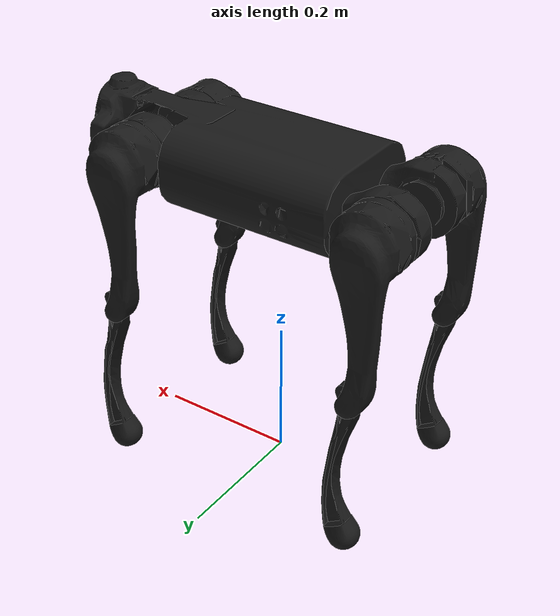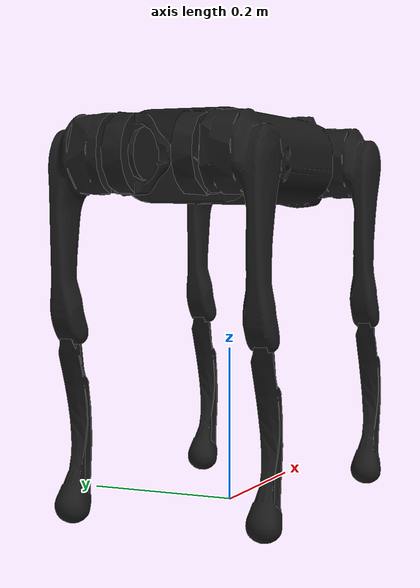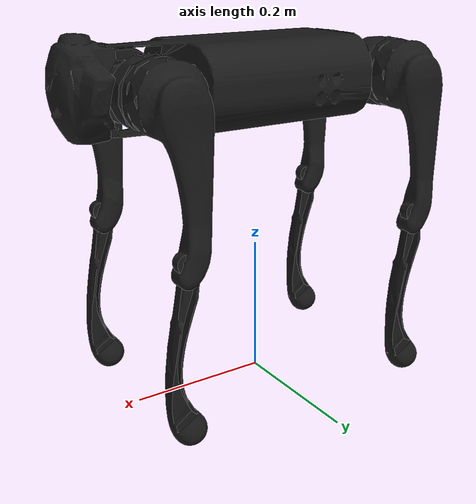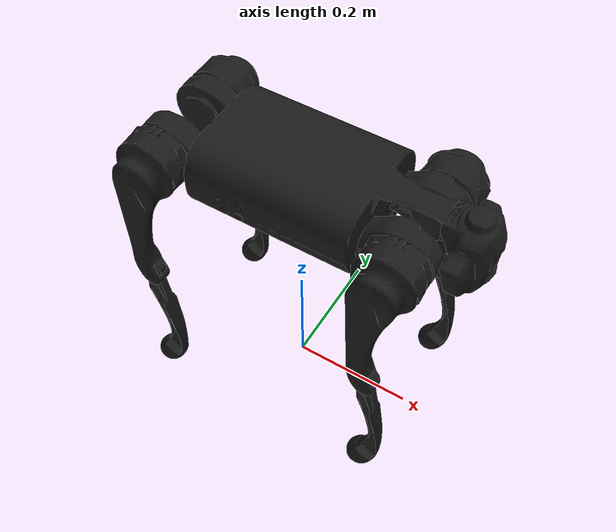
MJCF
<mujoco model="go1">
  <compiler angle="radian" meshdir="assets" autolimits="true"/>

  <option cone="pyramidal" impratio="100"/>

  <default>
    <default class="go1">
      <geom friction="0.6" margin="0.001"/>
      <joint axis="0 1 0" damping="2" armature="0.01"/>
      <general forcerange="-23.7 23.7" biastype="affine" gainprm="40" biasprm="0 -40 -3"/>
      <default class="abduction">
        <joint axis="1 0 0" damping="1" range="-0.863 0.863"/>
        <general ctrlrange="-0.863 0.863"/>
      </default>
      <default class="hip">
        <joint range="-0.686 4.501"/>
        <general ctrlrange="-0.686 4.501"/>
      </default>
      <default class="knee">
        <joint range="-2.818 -0.888"/>
        <general forcerange="-35.55 35.55" ctrlrange="-2.818 -0.888"/>
      </default>
      <default class="visual">
        <geom type="mesh" contype="0" conaffinity="0" group="2" material="dark"/>
      </default>
      <default class="collision">
        <geom group="3" type="capsule"/>
        <default class="hip_left3">
          <geom size="0.02 0.02 0.046" quat="1 1 0 0" type="box"/>
        </default>
        <default class="hip_right3">
          <geom size="0.02 0.02 0.046" quat="1 1 0 0" type="box"/>
        </default>
        <default class="foot">
          <geom type="sphere" size="0.023" pos="0 0 -0.213" priority="1" solimp="0.015 1 0.031" condim="3"
            friction="0.8 0.02 0.01"/>
        </default>
      </default>
    </default>
  </default>

  <asset>
    <material name="dark" rgba="0.1 0.1 0.1 1"/>
    <mesh class="go1" file="trunk.stl"/>
    <mesh class="go1" file="hip.stl"/>
    <mesh class="go1" file="thigh_mirror.stl"/>
    <mesh class="go1" file="calf.stl"/>
    <mesh class="go1" file="thigh.stl"/>
  </asset>

  <worldbody>
    <light name="spotlight" mode="targetbodycom" target="trunk" pos="0 -1 2"/>
    <body name="trunk" pos="0 0 0.445" childclass="go1">
      <camera name="tracking" mode="trackcom" pos="0 -1 0.8" xyaxes="1 0 0 0 1 1"/>
      <site name="head" pos="0.3 0 0" rgba="1 0 0 1" size="0.02" group="5"/>
      <inertial pos="0.0223 0.002 -0.0005" quat="-0.00342088 0.705204 0.000106698 0.708996" mass="5.204"
        diaginertia="0.0716565 0.0630105 0.0168101"/>
      <freejoint/>
      <geom class="visual" mesh="trunk"/>
      <body name="FL_hip" pos="0.1881 0.04675 0">
        <inertial pos="-0.0049166 -0.00762615 -8.865e-05" quat="0.482891 0.495027 0.514169 0.507341" mass="0.68"
          diaginertia="0.000734064 0.000468438 0.000398719"/>
        <joint class="abduction" name="FL_hip_joint"/>
        <geom class="visual" mesh="hip"/>
        <body name="FL_thigh" pos="0 0.08 0">
          <inertial pos="-0.00304722 -0.019315 -0.0305004" quat="0.753383 0.0775126 -0.0272313 0.65243" mass="1.009"
            diaginertia="0.00478717 0.00460903 0.000709268"/>
          <joint class="hip" name="FL_thigh_joint"/>
          <geom class="visual" mesh="thigh"/>
          <body name="FL_calf" pos="0 0 -0.213">
            <inertial pos="0.00429862 0.000976676 -0.146197" quat="0.691246 0.00357467 0.00511118 0.722592"
              mass="0.195862" diaginertia="0.00149767 0.00148468 3.58427e-05"/>
            <joint class="knee" name="FL_calf_joint"/>
            <geom class="visual" mesh="calf"/>
            <geom name="FL" class="foot"/>
            <site name="FL" pos="0 0 -0.213" type="sphere" size="0.023" group="5"/>
          </body>
        </body>
      </body>
      <body name="FR_hip" pos="0.1881 -0.04675 0">
        <inertial pos="-0.0049166 0.00762615 -8.865e-05" quat="0.507341 0.514169 0.495027 0.482891" mass="0.68"
          diaginertia="0.000734064 0.000468438 0.000398719"/>
        <joint class="abduction" name="FR_hip_joint"/>
        <geom class="visual" mesh="hip" quat="1 0 0 0"/>
        <body name="FR_thigh" pos="0 -0.08 0">
          <inertial pos="-0.00304722 0.019315 -0.0305004" quat="0.65243 -0.0272313 0.0775126 0.753383" mass="1.009"
            diaginertia="0.00478717 0.00460903 0.000709268"/>
          <joint class="hip" name="FR_thigh_joint"/>
          <geom class="visual" mesh="thigh_mirror"/>
          <body name="FR_calf" pos="0 0 -0.213">
            <inertial pos="0.00429862 0.000976676 -0.146197" quat="0.691246 0.00357467 0.00511118 0.722592"
              mass="0.195862" diaginertia="0.00149767 0.00148468 3.58427e-05"/>
            <joint class="knee" name="FR_calf_joint"/>
            <geom class="visual" mesh="calf"/>
            <geom name="FR" class="foot"/>
            <site name="FR" pos="0 0 -0.213" type="sphere" size="0.023" group="5"/>
          </body>
        </body>
      </body>
      <body name="RL_hip" pos="-0.1881 0.04675 0">
        <inertial pos="0.0049166 -0.00762615 -8.865e-05" quat="0.514169 0.507341 0.482891 0.495027" mass="0.68"
          diaginertia="0.000734064 0.000468438 0.000398719"/>
        <joint class="abduction" name="RL_hip_joint"/>
        <geom class="visual" quat="0 0 1 0" mesh="hip"/>
        <geom class="hip_left3"/>
        <body name="RL_thigh" pos="0 0.08 0">
          <inertial pos="-0.00304722 -0.019315 -0.0305004" quat="0.753383 0.0775126 -0.0272313 0.65243" mass="1.009"
            diaginertia="0.00478717 0.00460903 0.000709268"/>
          <joint class="hip" name="RL_thigh_joint"/>
          <geom class="visual" mesh="thigh"/>
          <body name="RL_calf" pos="0 0 -0.213">
            <inertial pos="0.00429862 0.000976676 -0.146197" quat="0.691246 0.00357467 0.00511118 0.722592"
              mass="0.195862" diaginertia="0.00149767 0.00148468 3.58427e-05"/>
            <joint class="knee" name="RL_calf_joint"/>
            <geom class="visual" mesh="calf"/>
            <geom name="RL" class="foot"/>
            <site name="RL" pos="0 0 -0.213" type="sphere" size="0.023" group="5"/>
          </body>
        </body>
      </body>
      <body name="RR_hip" pos="-0.1881 -0.04675 0">
        <inertial pos="0.0049166 0.00762615 -8.865e-05" quat="0.495027 0.482891 0.507341 0.514169" mass="0.68"
          diaginertia="0.000734064 0.000468438 0.000398719"/>
        <joint class="abduction" name="RR_hip_joint"/>
        <geom class="visual" quat="0 0 0 -1" mesh="hip"/>
        <geom class="hip_right3"/>
        <body name="RR_thigh" pos="0 -0.08 0">
          <inertial pos="-0.00304722 0.019315 -0.0305004" quat="0.65243 -0.0272313 0.0775126 0.753383" mass="1.009"
            diaginertia="0.00478717 0.00460903 0.000709268"/>
          <joint class="hip" name="RR_thigh_joint"/>
          <geom class="visual" mesh="thigh_mirror"/>
          <body name="RR_calf" pos="0 0 -0.213">
            <inertial pos="0.00429862 0.000976676 -0.146197" quat="0.691246 0.00357467 0.00511118 0.722592"
              mass="0.195862" diaginertia="0.00149767 0.00148468 3.58427e-05"/>
            <joint class="knee" name="RR_calf_joint"/>
            <geom class="visual" mesh="calf"/>
            <geom name="RR" class="foot"/>
            <site name="RR" pos="0 0 -0.213" type="sphere" size="0.023" group="5"/>
          </body>
        </body>
      </body>
    </body>
  </worldbody>

  <actuator>
    <general class="abduction" name="FR_hip" joint="FR_hip_joint"/>
    <general class="hip" name="FR_thigh" joint="FR_thigh_joint"/>
    <general class="knee" name="FR_calf" joint="FR_calf_joint"/>
    <general class="abduction" name="FL_hip" joint="FL_hip_joint"/>
    <general class="hip" name="FL_thigh" joint="FL_thigh_joint"/>
    <general class="knee" name="FL_calf" joint="FL_calf_joint"/>
    <general class="abduction" name="RR_hip" joint="RR_hip_joint"/>
    <general class="hip" name="RR_thigh" joint="RR_thigh_joint"/>
    <general class="knee" name="RR_calf" joint="RR_calf_joint"/>
    <general class="abduction" name="RL_hip" joint="RL_hip_joint"/>
    <general class="hip" name="RL_thigh" joint="RL_thigh_joint"/>
    <general class="knee" name="RL_calf" joint="RL_calf_joint"/>
  </actuator>

  <keyframe>
    <key name="home"
         qpos="0 0 0.2
               1 0 0 0
               0.116 1.1245 -2.1332
               0.116 1.1245 -2.1332
               0.116 1.1245 -2.1332
               0.116 1.1245 -2.1332"
        ctrl="0 0.9 -1.8
              0 0.9 -1.8
              0 0.9 -1.8
              0 0.9 -1.8"/>
    <key name="ground"
          qpos="0 0 0.08
                1 0 0 0
                0.073 1.34 -2.83
                0.073 1.34 -2.83
                0.073 1.34 -2.83
                0.073 1.34 -2.83"
          ctrl="0.073 1.34 -2.83
                0.073 1.34 -2.83
                0.073 1.34 -2.83
                0.073 1.34 -2.83"/>
    <key name="up"
          qpos="0 0 0.27
                1 0 0 0
                0 0.9 -1.8
                0 -0.6 -1.8
                0 0.9 -1.8
                0 0.9 -1.8"
          ctrl="0 -0.6 -1.8
                0 0.9 -1.8
                0 0.9 -1.8
                0 0.9 -1.8"/>
  </keyframe>
</mujoco>
